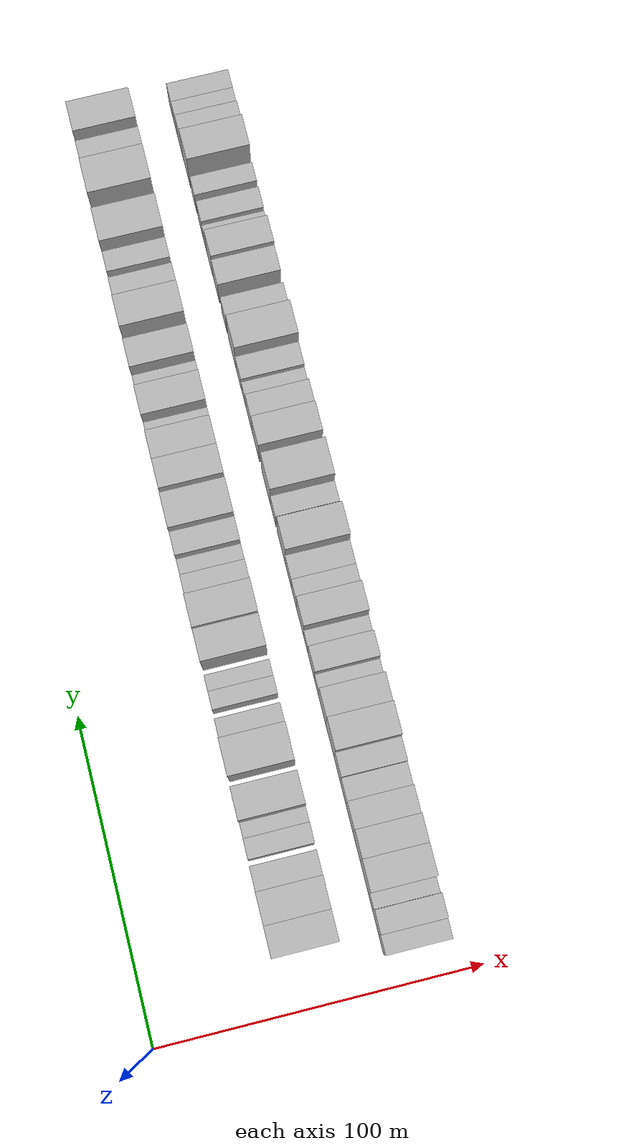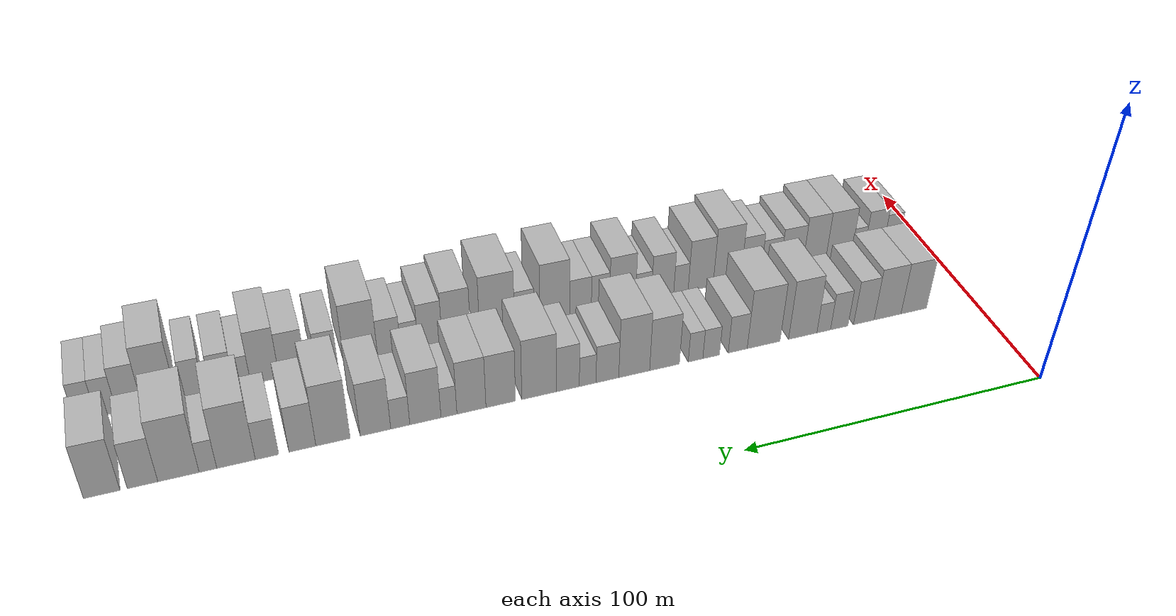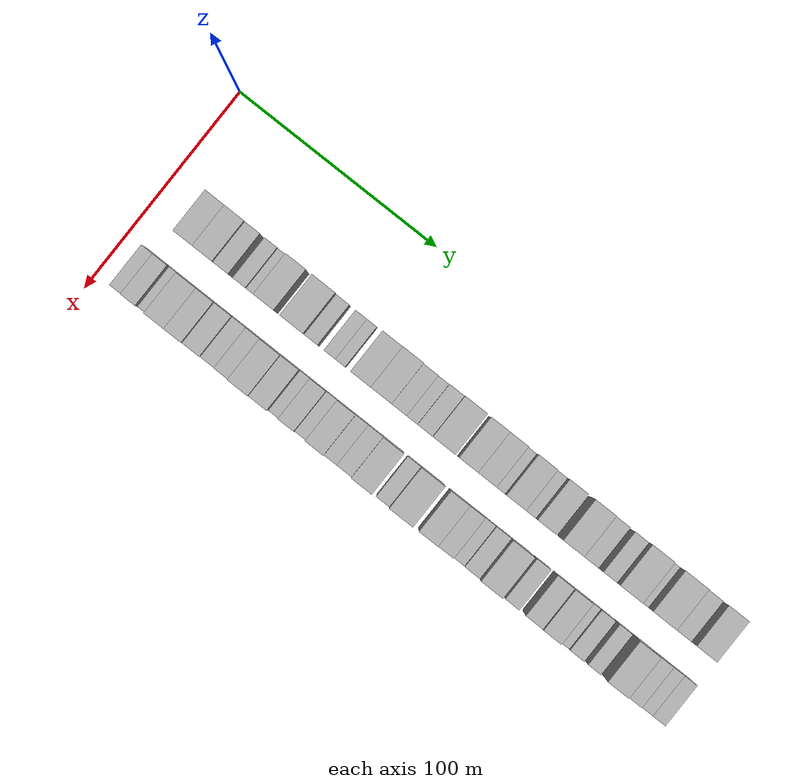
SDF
<sdf version="1.6">
 <world name="default">
  <model name="building_32">
   <static>1</static>
   <pose>50.0000 21.7320 0 0.000000 0.000000 0.000000</pose>
   <link name="link">
    <pose>0 0 10.50 0 0 0</pose>
    <collision name="collision"><geometry><box><size>20.0000 9.4007 21.0000</size></box></geometry></collision>
    <visual name="visual">
     <cast_shadows>0</cast_shadows>
     <geometry><box><size>20.0000 9.4007 21.0000</size></box></geometry>
     <material>
      <script>
       <uri>model://HANNAS_wall/materials/scripts</uri>
       <uri>model://HANNAS_wall/materials/textures</uri>
       <name>vrc/HANNAS_wall</name>
      </script>
     </material>
    </visual>
   </link>
  </model>
  <model name="building_33">
   <static>1</static>
   <pose>50.0000 31.3498 0 0.000000 0.000000 0.000000</pose>
   <link name="link">
    <pose>0 0 10.50 0 0 0</pose>
    <collision name="collision"><geometry><box><size>20.0000 9.8350 21.0000</size></box></geometry></collision>
    <visual name="visual">
     <cast_shadows>0</cast_shadows>
     <geometry><box><size>20.0000 9.8350 21.0000</size></box></geometry>
     <material>
      <script>
       <uri>model://HANNAS_wall/materials/scripts</uri>
       <uri>model://HANNAS_wall/materials/textures</uri>
       <name>vrc/HANNAS_wall</name>
      </script>
     </material>
    </visual>
   </link>
  </model>
  <model name="building_34">
   <static>1</static>
   <pose>50.0000 39.9967 0 0.000000 0.000000 0.000000</pose>
   <link name="link">
    <pose>0 0 9.00 0 0 0</pose>
    <collision name="collision"><geometry><box><size>20.0000 7.4589 18.0000</size></box></geometry></collision>
    <visual name="visual">
     <cast_shadows>0</cast_shadows>
     <geometry><box><size>20.0000 7.4589 18.0000</size></box></geometry>
     <material>
      <script>
       <uri>model://HANNAS_wall/materials/scripts</uri>
       <uri>model://HANNAS_wall/materials/textures</uri>
       <name>vrc/HANNAS_wall</name>
      </script>
     </material>
    </visual>
   </link>
  </model>
  <model name="building_35">
   <static>1</static>
   <pose>50.0000 48.8616 0 0.000000 0.000000 0.000000</pose>
   <link name="link">
    <pose>0 0 7.50 0 0 0</pose>
    <collision name="collision"><geometry><box><size>20.0000 6.2709 15.0000</size></box></geometry></collision>
    <visual name="visual">
     <cast_shadows>0</cast_shadows>
     <geometry><box><size>20.0000 6.2709 15.0000</size></box></geometry>
     <material>
      <script>
       <uri>model://HANNAS_wall/materials/scripts</uri>
       <uri>model://HANNAS_wall/materials/textures</uri>
       <name>vrc/HANNAS_wall</name>
      </script>
     </material>
    </visual>
   </link>
  </model>
  <model name="building_36">
   <static>1</static>
   <pose>50.0000 54.4242 0 0.000000 0.000000 0.000000</pose>
   <link name="link">
    <pose>0 0 6.00 0 0 0</pose>
    <collision name="collision"><geometry><box><size>20.0000 4.8543 12.0000</size></box></geometry></collision>
    <visual name="visual">
     <cast_shadows>0</cast_shadows>
     <geometry><box><size>20.0000 4.8543 12.0000</size></box></geometry>
     <material>
      <script>
       <uri>model://HANNAS_wall/materials/scripts</uri>
       <uri>model://HANNAS_wall/materials/textures</uri>
       <name>vrc/HANNAS_wall</name>
      </script>
     </material>
    </visual>
   </link>
  </model>
  <model name="building_37">
   <static>1</static>
   <pose>50.0000 61.8601 0 0.000000 0.000000 0.000000</pose>
   <link name="link">
    <pose>0 0 12.00 0 0 0</pose>
    <collision name="collision"><geometry><box><size>20.0000 10.0174 24.0000</size></box></geometry></collision>
    <visual name="visual">
     <cast_shadows>0</cast_shadows>
     <geometry><box><size>20.0000 10.0174 24.0000</size></box></geometry>
     <material>
      <script>
       <uri>model://HANNAS_wall/materials/scripts</uri>
       <uri>model://HANNAS_wall/materials/textures</uri>
       <name>vrc/HANNAS_wall</name>
      </script>
     </material>
    </visual>
   </link>
  </model>
  <model name="building_38">
   <static>1</static>
   <pose>50.0000 75.5891 0 0.000000 0.000000 0.000000</pose>
   <link name="link">
    <pose>0 0 12.00 0 0 0</pose>
    <collision name="collision"><geometry><box><size>20.0000 11.4407 24.0000</size></box></geometry></collision>
    <visual name="visual">
     <cast_shadows>0</cast_shadows>
     <geometry><box><size>20.0000 11.4407 24.0000</size></box></geometry>
     <material>
      <script>
       <uri>model://HANNAS_wall/materials/scripts</uri>
       <uri>model://HANNAS_wall/materials/textures</uri>
       <name>vrc/HANNAS_wall</name>
      </script>
     </material>
    </visual>
   </link>
  </model>
  <model name="building_39">
   <static>1</static>
   <pose>50.0000 84.5925 0 0.000000 0.000000 0.000000</pose>
   <link name="link">
    <pose>0 0 7.50 0 0 0</pose>
    <collision name="collision"><geometry><box><size>20.0000 6.5662 15.0000</size></box></geometry></collision>
    <visual name="visual">
     <cast_shadows>0</cast_shadows>
     <geometry><box><size>20.0000 6.5662 15.0000</size></box></geometry>
     <material>
      <script>
       <uri>model://HANNAS_wall/materials/scripts</uri>
       <uri>model://HANNAS_wall/materials/textures</uri>
       <name>vrc/HANNAS_wall</name>
      </script>
     </material>
    </visual>
   </link>
  </model>
  <model name="building_40">
   <static>1</static>
   <pose>50.0000 93.7142 0 0.000000 0.000000 0.000000</pose>
   <link name="link">
    <pose>0 0 6.00 0 0 0</pose>
    <collision name="collision"><geometry><box><size>20.0000 5.6771 12.0000</size></box></geometry></collision>
    <visual name="visual">
     <cast_shadows>0</cast_shadows>
     <geometry><box><size>20.0000 5.6771 12.0000</size></box></geometry>
     <material>
      <script>
       <uri>model://HANNAS_wall/materials/scripts</uri>
       <uri>model://HANNAS_wall/materials/textures</uri>
       <name>vrc/HANNAS_wall</name>
      </script>
     </material>
    </visual>
   </link>
  </model>
  <model name="building_41">
   <static>1</static>
   <pose>50.0000 99.0302 0 0.000000 0.000000 0.000000</pose>
   <link name="link">
    <pose>0 0 6.00 0 0 0</pose>
    <collision name="collision"><geometry><box><size>20.0000 4.9550 12.0000</size></box></geometry></collision>
    <visual name="visual">
     <cast_shadows>0</cast_shadows>
     <geometry><box><size>20.0000 4.9550 12.0000</size></box></geometry>
     <material>
      <script>
       <uri>model://HANNAS_wall/materials/scripts</uri>
       <uri>model://HANNAS_wall/materials/textures</uri>
       <name>vrc/HANNAS_wall</name>
      </script>
     </material>
    </visual>
   </link>
  </model>
  <model name="building_42">
   <static>1</static>
   <pose>50.0000 109.4986 0 0.000000 0.000000 0.000000</pose>
   <link name="link">
    <pose>0 0 10.50 0 0 0</pose>
    <collision name="collision"><geometry><box><size>20.0000 9.9817 21.0000</size></box></geometry></collision>
    <visual name="visual">
     <cast_shadows>0</cast_shadows>
     <geometry><box><size>20.0000 9.9817 21.0000</size></box></geometry>
     <material>
      <script>
       <uri>model://HANNAS_wall/materials/scripts</uri>
       <uri>model://HANNAS_wall/materials/textures</uri>
       <name>vrc/HANNAS_wall</name>
      </script>
     </material>
    </visual>
   </link>
  </model>
  <model name="building_43">
   <static>1</static>
   <pose>50.0000 119.6205 0 0.000000 0.000000 0.000000</pose>
   <link name="link">
    <pose>0 0 12.00 0 0 0</pose>
    <collision name="collision"><geometry><box><size>20.0000 10.2622 24.0000</size></box></geometry></collision>
    <visual name="visual">
     <cast_shadows>0</cast_shadows>
     <geometry><box><size>20.0000 10.2622 24.0000</size></box></geometry>
     <material>
      <script>
       <uri>model://HANNAS_wall/materials/scripts</uri>
       <uri>model://HANNAS_wall/materials/textures</uri>
       <name>vrc/HANNAS_wall</name>
      </script>
     </material>
    </visual>
   </link>
  </model>
  <model name="building_44">
   <static>1</static>
   <pose>50.0000 128.4850 0 0.000000 0.000000 0.000000</pose>
   <link name="link">
    <pose>0 0 7.50 0 0 0</pose>
    <collision name="collision"><geometry><box><size>20.0000 7.4667 15.0000</size></box></geometry></collision>
    <visual name="visual">
     <cast_shadows>0</cast_shadows>
     <geometry><box><size>20.0000 7.4667 15.0000</size></box></geometry>
     <material>
      <script>
       <uri>model://HANNAS_wall/materials/scripts</uri>
       <uri>model://HANNAS_wall/materials/textures</uri>
       <name>vrc/HANNAS_wall</name>
      </script>
     </material>
    </visual>
   </link>
  </model>
  <model name="building_45">
   <static>1</static>
   <pose>50.0000 134.9356 0 0.000000 0.000000 0.000000</pose>
   <link name="link">
    <pose>0 0 6.00 0 0 0</pose>
    <collision name="collision"><geometry><box><size>20.0000 5.4345 12.0000</size></box></geometry></collision>
    <visual name="visual">
     <cast_shadows>0</cast_shadows>
     <geometry><box><size>20.0000 5.4345 12.0000</size></box></geometry>
     <material>
      <script>
       <uri>model://HANNAS_wall/materials/scripts</uri>
       <uri>model://HANNAS_wall/materials/textures</uri>
       <name>vrc/HANNAS_wall</name>
      </script>
     </material>
    </visual>
   </link>
  </model>
  <model name="building_46">
   <static>1</static>
   <pose>50.0000 141.3621 0 0.000000 0.000000 0.000000</pose>
   <link name="link">
    <pose>0 0 9.00 0 0 0</pose>
    <collision name="collision"><geometry><box><size>20.0000 7.4186 18.0000</size></box></geometry></collision>
    <visual name="visual">
     <cast_shadows>0</cast_shadows>
     <geometry><box><size>20.0000 7.4186 18.0000</size></box></geometry>
     <material>
      <script>
       <uri>model://HANNAS_wall/materials/scripts</uri>
       <uri>model://HANNAS_wall/materials/textures</uri>
       <name>vrc/HANNAS_wall</name>
      </script>
     </material>
    </visual>
   </link>
  </model>
  <model name="building_47">
   <static>1</static>
   <pose>50.0000 150.5891 0 0.000000 0.000000 0.000000</pose>
   <link name="link">
    <pose>0 0 12.00 0 0 0</pose>
    <collision name="collision"><geometry><box><size>20.0000 11.0352 24.0000</size></box></geometry></collision>
    <visual name="visual">
     <cast_shadows>0</cast_shadows>
     <geometry><box><size>20.0000 11.0352 24.0000</size></box></geometry>
     <material>
      <script>
       <uri>model://HANNAS_wall/materials/scripts</uri>
       <uri>model://HANNAS_wall/materials/textures</uri>
       <name>vrc/HANNAS_wall</name>
      </script>
     </material>
    </visual>
   </link>
  </model>
  <model name="building_48">
   <static>1</static>
   <pose>50.0000 162.7704 0 0.000000 0.000000 0.000000</pose>
   <link name="link">
    <pose>0 0 10.50 0 0 0</pose>
    <collision name="collision"><geometry><box><size>20.0000 9.3275 21.0000</size></box></geometry></collision>
    <visual name="visual">
     <cast_shadows>0</cast_shadows>
     <geometry><box><size>20.0000 9.3275 21.0000</size></box></geometry>
     <material>
      <script>
       <uri>model://HANNAS_wall/materials/scripts</uri>
       <uri>model://HANNAS_wall/materials/textures</uri>
       <name>vrc/HANNAS_wall</name>
      </script>
     </material>
    </visual>
   </link>
  </model>
  <model name="building_49">
   <static>1</static>
   <pose>50.0000 171.9692 0 0.000000 0.000000 0.000000</pose>
   <link name="link">
    <pose>0 0 10.50 0 0 0</pose>
    <collision name="collision"><geometry><box><size>20.0000 9.0700 21.0000</size></box></geometry></collision>
    <visual name="visual">
     <cast_shadows>0</cast_shadows>
     <geometry><box><size>20.0000 9.0700 21.0000</size></box></geometry>
     <material>
      <script>
       <uri>model://HANNAS_wall/materials/scripts</uri>
       <uri>model://HANNAS_wall/materials/textures</uri>
       <name>vrc/HANNAS_wall</name>
      </script>
     </material>
    </visual>
   </link>
  </model>
  <model name="building_50">
   <static>1</static>
   <pose>50.0000 178.9733 0 0.000000 0.000000 0.000000</pose>
   <link name="link">
    <pose>0 0 6.00 0 0 0</pose>
    <collision name="collision"><geometry><box><size>20.0000 4.9381 12.0000</size></box></geometry></collision>
    <visual name="visual">
     <cast_shadows>0</cast_shadows>
     <geometry><box><size>20.0000 4.9381 12.0000</size></box></geometry>
     <material>
      <script>
       <uri>model://HANNAS_wall/materials/scripts</uri>
       <uri>model://HANNAS_wall/materials/textures</uri>
       <name>vrc/HANNAS_wall</name>
      </script>
     </material>
    </visual>
   </link>
  </model>
  <model name="building_51">
   <static>1</static>
   <pose>50.0000 186.2289 0 0.000000 0.000000 0.000000</pose>
   <link name="link">
    <pose>0 0 10.50 0 0 0</pose>
    <collision name="collision"><geometry><box><size>20.0000 9.5733 21.0000</size></box></geometry></collision>
    <visual name="visual">
     <cast_shadows>0</cast_shadows>
     <geometry><box><size>20.0000 9.5733 21.0000</size></box></geometry>
     <material>
      <script>
       <uri>model://HANNAS_wall/materials/scripts</uri>
       <uri>model://HANNAS_wall/materials/textures</uri>
       <name>vrc/HANNAS_wall</name>
      </script>
     </material>
    </visual>
   </link>
  </model>
  <model name="building_52">
   <static>1</static>
   <pose>50.0000 193.9104 0 0.000000 0.000000 0.000000</pose>
   <link name="link">
    <pose>0 0 6.00 0 0 0</pose>
    <collision name="collision"><geometry><box><size>20.0000 5.7896 12.0000</size></box></geometry></collision>
    <visual name="visual">
     <cast_shadows>0</cast_shadows>
     <geometry><box><size>20.0000 5.7896 12.0000</size></box></geometry>
     <material>
      <script>
       <uri>model://HANNAS_wall/materials/scripts</uri>
       <uri>model://HANNAS_wall/materials/textures</uri>
       <name>vrc/HANNAS_wall</name>
      </script>
     </material>
    </visual>
   </link>
  </model>
  <model name="building_53">
   <static>1</static>
   <pose>50.0000 201.4157 0 0.000000 0.000000 0.000000</pose>
   <link name="link">
    <pose>0 0 10.50 0 0 0</pose>
    <collision name="collision"><geometry><box><size>20.0000 9.2210 21.0000</size></box></geometry></collision>
    <visual name="visual">
     <cast_shadows>0</cast_shadows>
     <geometry><box><size>20.0000 9.2210 21.0000</size></box></geometry>
     <material>
      <script>
       <uri>model://HANNAS_wall/materials/scripts</uri>
       <uri>model://HANNAS_wall/materials/textures</uri>
       <name>vrc/HANNAS_wall</name>
      </script>
     </material>
    </visual>
   </link>
  </model>
  <model name="building_54">
   <static>1</static>
   <pose>50.0000 214.1235 0 0.000000 0.000000 0.000000</pose>
   <link name="link">
    <pose>0 0 12.00 0 0 0</pose>
    <collision name="collision"><geometry><box><size>20.0000 10.1945 24.0000</size></box></geometry></collision>
    <visual name="visual">
     <cast_shadows>0</cast_shadows>
     <geometry><box><size>20.0000 10.1945 24.0000</size></box></geometry>
     <material>
      <script>
       <uri>model://HANNAS_wall/materials/scripts</uri>
       <uri>model://HANNAS_wall/materials/textures</uri>
       <name>vrc/HANNAS_wall</name>
      </script>
     </material>
    </visual>
   </link>
  </model>
  <model name="building_55">
   <static>1</static>
   <pose>50.0000 223.1803 0 0.000000 0.000000 0.000000</pose>
   <link name="link">
    <pose>0 0 9.00 0 0 0</pose>
    <collision name="collision"><geometry><box><size>20.0000 7.9191 18.0000</size></box></geometry></collision>
    <visual name="visual">
     <cast_shadows>0</cast_shadows>
     <geometry><box><size>20.0000 7.9191 18.0000</size></box></geometry>
     <material>
      <script>
       <uri>model://HANNAS_wall/materials/scripts</uri>
       <uri>model://HANNAS_wall/materials/textures</uri>
       <name>vrc/HANNAS_wall</name>
      </script>
     </material>
    </visual>
   </link>
  </model>
  <model name="building_56">
   <static>1</static>
   <pose>50.0000 233.5249 0 0.000000 0.000000 0.000000</pose>
   <link name="link">
    <pose>0 0 7.50 0 0 0</pose>
    <collision name="collision"><geometry><box><size>20.0000 6.7701 15.0000</size></box></geometry></collision>
    <visual name="visual">
     <cast_shadows>0</cast_shadows>
     <geometry><box><size>20.0000 6.7701 15.0000</size></box></geometry>
     <material>
      <script>
       <uri>model://HANNAS_wall/materials/scripts</uri>
       <uri>model://HANNAS_wall/materials/textures</uri>
       <name>vrc/HANNAS_wall</name>
      </script>
     </material>
    </visual>
   </link>
  </model>
  <model name="building_57">
   <static>1</static>
   <pose>50.0000 242.4495 0 0.000000 0.000000 0.000000</pose>
   <link name="link">
    <pose>0 0 12.00 0 0 0</pose>
    <collision name="collision"><geometry><box><size>20.0000 11.0789 24.0000</size></box></geometry></collision>
    <visual name="visual">
     <cast_shadows>0</cast_shadows>
     <geometry><box><size>20.0000 11.0789 24.0000</size></box></geometry>
     <material>
      <script>
       <uri>model://HANNAS_wall/materials/scripts</uri>
       <uri>model://HANNAS_wall/materials/textures</uri>
       <name>vrc/HANNAS_wall</name>
      </script>
     </material>
    </visual>
   </link>
  </model>
  <model name="building_58">
   <static>1</static>
   <pose>50.0000 250.5043 0 0.000000 0.000000 0.000000</pose>
   <link name="link">
    <pose>0 0 6.00 0 0 0</pose>
    <collision name="collision"><geometry><box><size>20.0000 5.0308 12.0000</size></box></geometry></collision>
    <visual name="visual">
     <cast_shadows>0</cast_shadows>
     <geometry><box><size>20.0000 5.0308 12.0000</size></box></geometry>
     <material>
      <script>
       <uri>model://HANNAS_wall/materials/scripts</uri>
       <uri>model://HANNAS_wall/materials/textures</uri>
       <name>vrc/HANNAS_wall</name>
      </script>
     </material>
    </visual>
   </link>
  </model>
  <model name="building_59">
   <static>1</static>
   <pose>50.0000 258.8206 0 0.000000 0.000000 0.000000</pose>
   <link name="link">
    <pose>0 0 12.00 0 0 0</pose>
    <collision name="collision"><geometry><box><size>20.0000 11.6018 24.0000</size></box></geometry></collision>
    <visual name="visual">
     <cast_shadows>0</cast_shadows>
     <geometry><box><size>20.0000 11.6018 24.0000</size></box></geometry>
     <material>
      <script>
       <uri>model://HANNAS_wall/materials/scripts</uri>
       <uri>model://HANNAS_wall/materials/textures</uri>
       <name>vrc/HANNAS_wall</name>
      </script>
     </material>
    </visual>
   </link>
  </model>
  <model name="building_60">
   <static>1</static>
   <pose>50.0000 268.8721 0 0.000000 0.000000 0.000000</pose>
   <link name="link">
    <pose>0 0 9.00 0 0 0</pose>
    <collision name="collision"><geometry><box><size>20.0000 8.5012 18.0000</size></box></geometry></collision>
    <visual name="visual">
     <cast_shadows>0</cast_shadows>
     <geometry><box><size>20.0000 8.5012 18.0000</size></box></geometry>
     <material>
      <script>
       <uri>model://HANNAS_wall/materials/scripts</uri>
       <uri>model://HANNAS_wall/materials/textures</uri>
       <name>vrc/HANNAS_wall</name>
      </script>
     </material>
    </visual>
   </link>
  </model>
  <model name="building_61">
   <static>1</static>
   <pose>50.0000 280.1380 0 0.000000 0.000000 0.000000</pose>
   <link name="link">
    <pose>0 0 10.50 0 0 0</pose>
    <collision name="collision"><geometry><box><size>20.0000 10.0306 21.0000</size></box></geometry></collision>
    <visual name="visual">
     <cast_shadows>0</cast_shadows>
     <geometry><box><size>20.0000 10.0306 21.0000</size></box></geometry>
     <material>
      <script>
       <uri>model://HANNAS_wall/materials/scripts</uri>
       <uri>model://HANNAS_wall/materials/textures</uri>
       <name>vrc/HANNAS_wall</name>
      </script>
     </material>
    </visual>
   </link>
  </model>
  <model name="building_94">
   <static>1</static>
   <pose>82.0000 12.8308 0 0.000000 0.000000 0.000000</pose>
   <link name="link">
    <pose>0 0 7.50 0 0 0</pose>
    <collision name="collision"><geometry><box><size>20.0000 6.0413 15.0000</size></box></geometry></collision>
    <visual name="visual">
     <cast_shadows>0</cast_shadows>
     <geometry><box><size>20.0000 6.0413 15.0000</size></box></geometry>
     <material>
      <script>
       <uri>model://HANNAS_wall/materials/scripts</uri>
       <uri>model://HANNAS_wall/materials/textures</uri>
       <name>vrc/HANNAS_wall</name>
      </script>
     </material>
    </visual>
   </link>
  </model>
  <model name="building_95">
   <static>1</static>
   <pose>82.0000 19.5110 0 0.000000 0.000000 0.000000</pose>
   <link name="link">
    <pose>0 0 9.00 0 0 0</pose>
    <collision name="collision"><geometry><box><size>20.0000 7.3191 18.0000</size></box></geometry></collision>
    <visual name="visual">
     <cast_shadows>0</cast_shadows>
     <geometry><box><size>20.0000 7.3191 18.0000</size></box></geometry>
     <material>
      <script>
       <uri>model://HANNAS_wall/materials/scripts</uri>
       <uri>model://HANNAS_wall/materials/textures</uri>
       <name>vrc/HANNAS_wall</name>
      </script>
     </material>
    </visual>
   </link>
  </model>
  <model name="building_96">
   <static>1</static>
   <pose>82.0000 25.5887 0 0.000000 0.000000 0.000000</pose>
   <link name="link">
    <pose>0 0 6.00 0 0 0</pose>
    <collision name="collision"><geometry><box><size>20.0000 4.8363 12.0000</size></box></geometry></collision>
    <visual name="visual">
     <cast_shadows>0</cast_shadows>
     <geometry><box><size>20.0000 4.8363 12.0000</size></box></geometry>
     <material>
      <script>
       <uri>model://HANNAS_wall/materials/scripts</uri>
       <uri>model://HANNAS_wall/materials/textures</uri>
       <name>vrc/HANNAS_wall</name>
      </script>
     </material>
    </visual>
   </link>
  </model>
  <model name="building_97">
   <static>1</static>
   <pose>82.0000 32.9070 0 0.000000 0.000000 0.000000</pose>
   <link name="link">
    <pose>0 0 10.50 0 0 0</pose>
    <collision name="collision"><geometry><box><size>20.0000 9.8003 21.0000</size></box></geometry></collision>
    <visual name="visual">
     <cast_shadows>0</cast_shadows>
     <geometry><box><size>20.0000 9.8003 21.0000</size></box></geometry>
     <material>
      <script>
       <uri>model://HANNAS_wall/materials/scripts</uri>
       <uri>model://HANNAS_wall/materials/textures</uri>
       <name>vrc/HANNAS_wall</name>
      </script>
     </material>
    </visual>
   </link>
  </model>
  <model name="building_98">
   <static>1</static>
   <pose>82.0000 42.1317 0 0.000000 0.000000 0.000000</pose>
   <link name="link">
    <pose>0 0 10.50 0 0 0</pose>
    <collision name="collision"><geometry><box><size>20.0000 8.6489 21.0000</size></box></geometry></collision>
    <visual name="visual">
     <cast_shadows>0</cast_shadows>
     <geometry><box><size>20.0000 8.6489 21.0000</size></box></geometry>
     <material>
      <script>
       <uri>model://HANNAS_wall/materials/scripts</uri>
       <uri>model://HANNAS_wall/materials/textures</uri>
       <name>vrc/HANNAS_wall</name>
      </script>
     </material>
    </visual>
   </link>
  </model>
  <model name="building_99">
   <static>1</static>
   <pose>82.0000 50.7151 0 0.000000 0.000000 0.000000</pose>
   <link name="link">
    <pose>0 0 9.00 0 0 0</pose>
    <collision name="collision"><geometry><box><size>20.0000 8.5179 18.0000</size></box></geometry></collision>
    <visual name="visual">
     <cast_shadows>0</cast_shadows>
     <geometry><box><size>20.0000 8.5179 18.0000</size></box></geometry>
     <material>
      <script>
       <uri>model://HANNAS_wall/materials/scripts</uri>
       <uri>model://HANNAS_wall/materials/textures</uri>
       <name>vrc/HANNAS_wall</name>
      </script>
     </material>
    </visual>
   </link>
  </model>
  <model name="building_100">
   <static>1</static>
   <pose>82.0000 58.5149 0 0.000000 0.000000 0.000000</pose>
   <link name="link">
    <pose>0 0 7.50 0 0 0</pose>
    <collision name="collision"><geometry><box><size>20.0000 7.0816 15.0000</size></box></geometry></collision>
    <visual name="visual">
     <cast_shadows>0</cast_shadows>
     <geometry><box><size>20.0000 7.0816 15.0000</size></box></geometry>
     <material>
      <script>
       <uri>model://HANNAS_wall/materials/scripts</uri>
       <uri>model://HANNAS_wall/materials/textures</uri>
       <name>vrc/HANNAS_wall</name>
      </script>
     </material>
    </visual>
   </link>
  </model>
  <model name="building_101">
   <static>1</static>
   <pose>82.0000 65.7630 0 0.000000 0.000000 0.000000</pose>
   <link name="link">
    <pose>0 0 9.00 0 0 0</pose>
    <collision name="collision"><geometry><box><size>20.0000 7.4145 18.0000</size></box></geometry></collision>
    <visual name="visual">
     <cast_shadows>0</cast_shadows>
     <geometry><box><size>20.0000 7.4145 18.0000</size></box></geometry>
     <material>
      <script>
       <uri>model://HANNAS_wall/materials/scripts</uri>
       <uri>model://HANNAS_wall/materials/textures</uri>
       <name>vrc/HANNAS_wall</name>
      </script>
     </material>
    </visual>
   </link>
  </model>
  <model name="building_102">
   <static>1</static>
   <pose>82.0000 74.5083 0 0.000000 0.000000 0.000000</pose>
   <link name="link">
    <pose>0 0 12.00 0 0 0</pose>
    <collision name="collision"><geometry><box><size>20.0000 10.0762 24.0000</size></box></geometry></collision>
    <visual name="visual">
     <cast_shadows>0</cast_shadows>
     <geometry><box><size>20.0000 10.0762 24.0000</size></box></geometry>
     <material>
      <script>
       <uri>model://HANNAS_wall/materials/scripts</uri>
       <uri>model://HANNAS_wall/materials/textures</uri>
       <name>vrc/HANNAS_wall</name>
      </script>
     </material>
    </visual>
   </link>
  </model>
  <model name="building_103">
   <static>1</static>
   <pose>82.0000 84.0635 0 0.000000 0.000000 0.000000</pose>
   <link name="link">
    <pose>0 0 10.50 0 0 0</pose>
    <collision name="collision"><geometry><box><size>20.0000 9.0342 21.0000</size></box></geometry></collision>
    <visual name="visual">
     <cast_shadows>0</cast_shadows>
     <geometry><box><size>20.0000 9.0342 21.0000</size></box></geometry>
     <material>
      <script>
       <uri>model://HANNAS_wall/materials/scripts</uri>
       <uri>model://HANNAS_wall/materials/textures</uri>
       <name>vrc/HANNAS_wall</name>
      </script>
     </material>
    </visual>
   </link>
  </model>
  <model name="building_104">
   <static>1</static>
   <pose>82.0000 91.1669 0 0.000000 0.000000 0.000000</pose>
   <link name="link">
    <pose>0 0 6.00 0 0 0</pose>
    <collision name="collision"><geometry><box><size>20.0000 5.1724 12.0000</size></box></geometry></collision>
    <visual name="visual">
     <cast_shadows>0</cast_shadows>
     <geometry><box><size>20.0000 5.1724 12.0000</size></box></geometry>
     <material>
      <script>
       <uri>model://HANNAS_wall/materials/scripts</uri>
       <uri>model://HANNAS_wall/materials/textures</uri>
       <name>vrc/HANNAS_wall</name>
      </script>
     </material>
    </visual>
   </link>
  </model>
  <model name="building_105">
   <static>1</static>
   <pose>82.0000 97.7378 0 0.000000 0.000000 0.000000</pose>
   <link name="link">
    <pose>0 0 9.00 0 0 0</pose>
    <collision name="collision"><geometry><box><size>20.0000 7.9695 18.0000</size></box></geometry></collision>
    <visual name="visual">
     <cast_shadows>0</cast_shadows>
     <geometry><box><size>20.0000 7.9695 18.0000</size></box></geometry>
     <material>
      <script>
       <uri>model://HANNAS_wall/materials/scripts</uri>
       <uri>model://HANNAS_wall/materials/textures</uri>
       <name>vrc/HANNAS_wall</name>
      </script>
     </material>
    </visual>
   </link>
  </model>
  <model name="building_106">
   <static>1</static>
   <pose>82.0000 104.5505 0 0.000000 0.000000 0.000000</pose>
   <link name="link">
    <pose>0 0 6.00 0 0 0</pose>
    <collision name="collision"><geometry><box><size>20.0000 5.6559 12.0000</size></box></geometry></collision>
    <visual name="visual">
     <cast_shadows>0</cast_shadows>
     <geometry><box><size>20.0000 5.6559 12.0000</size></box></geometry>
     <material>
      <script>
       <uri>model://HANNAS_wall/materials/scripts</uri>
       <uri>model://HANNAS_wall/materials/textures</uri>
       <name>vrc/HANNAS_wall</name>
      </script>
     </material>
    </visual>
   </link>
  </model>
  <model name="building_107">
   <static>1</static>
   <pose>82.0000 111.9426 0 0.000000 0.000000 0.000000</pose>
   <link name="link">
    <pose>0 0 10.50 0 0 0</pose>
    <collision name="collision"><geometry><box><size>20.0000 9.1282 21.0000</size></box></geometry></collision>
    <visual name="visual">
     <cast_shadows>0</cast_shadows>
     <geometry><box><size>20.0000 9.1282 21.0000</size></box></geometry>
     <material>
      <script>
       <uri>model://HANNAS_wall/materials/scripts</uri>
       <uri>model://HANNAS_wall/materials/textures</uri>
       <name>vrc/HANNAS_wall</name>
      </script>
     </material>
    </visual>
   </link>
  </model>
  <model name="building_108">
   <static>1</static>
   <pose>82.0000 119.6538 0 0.000000 0.000000 0.000000</pose>
   <link name="link">
    <pose>0 0 7.50 0 0 0</pose>
    <collision name="collision"><geometry><box><size>20.0000 6.2944 15.0000</size></box></geometry></collision>
    <visual name="visual">
     <cast_shadows>0</cast_shadows>
     <geometry><box><size>20.0000 6.2944 15.0000</size></box></geometry>
     <material>
      <script>
       <uri>model://HANNAS_wall/materials/scripts</uri>
       <uri>model://HANNAS_wall/materials/textures</uri>
       <name>vrc/HANNAS_wall</name>
      </script>
     </material>
    </visual>
   </link>
  </model>
  <model name="building_109">
   <static>1</static>
   <pose>82.0000 126.5444 0 0.000000 0.000000 0.000000</pose>
   <link name="link">
    <pose>0 0 7.50 0 0 0</pose>
    <collision name="collision"><geometry><box><size>20.0000 7.4867 15.0000</size></box></geometry></collision>
    <visual name="visual">
     <cast_shadows>0</cast_shadows>
     <geometry><box><size>20.0000 7.4867 15.0000</size></box></geometry>
     <material>
      <script>
       <uri>model://HANNAS_wall/materials/scripts</uri>
       <uri>model://HANNAS_wall/materials/textures</uri>
       <name>vrc/HANNAS_wall</name>
      </script>
     </material>
    </visual>
   </link>
  </model>
  <model name="building_110">
   <static>1</static>
   <pose>82.0000 135.3780 0 0.000000 0.000000 0.000000</pose>
   <link name="link">
    <pose>0 0 12.00 0 0 0</pose>
    <collision name="collision"><geometry><box><size>20.0000 10.1806 24.0000</size></box></geometry></collision>
    <visual name="visual">
     <cast_shadows>0</cast_shadows>
     <geometry><box><size>20.0000 10.1806 24.0000</size></box></geometry>
     <material>
      <script>
       <uri>model://HANNAS_wall/materials/scripts</uri>
       <uri>model://HANNAS_wall/materials/textures</uri>
       <name>vrc/HANNAS_wall</name>
      </script>
     </material>
    </visual>
   </link>
  </model>
  <model name="building_111">
   <static>1</static>
   <pose>82.0000 145.7549 0 0.000000 0.000000 0.000000</pose>
   <link name="link">
    <pose>0 0 7.50 0 0 0</pose>
    <collision name="collision"><geometry><box><size>20.0000 6.5731 15.0000</size></box></geometry></collision>
    <visual name="visual">
     <cast_shadows>0</cast_shadows>
     <geometry><box><size>20.0000 6.5731 15.0000</size></box></geometry>
     <material>
      <script>
       <uri>model://HANNAS_wall/materials/scripts</uri>
       <uri>model://HANNAS_wall/materials/textures</uri>
       <name>vrc/HANNAS_wall</name>
      </script>
     </material>
    </visual>
   </link>
  </model>
  <model name="building_112">
   <static>1</static>
   <pose>82.0000 154.8648 0 0.000000 0.000000 0.000000</pose>
   <link name="link">
    <pose>0 0 12.00 0 0 0</pose>
    <collision name="collision"><geometry><box><size>20.0000 11.6469 24.0000</size></box></geometry></collision>
    <visual name="visual">
     <cast_shadows>0</cast_shadows>
     <geometry><box><size>20.0000 11.6469 24.0000</size></box></geometry>
     <material>
      <script>
       <uri>model://HANNAS_wall/materials/scripts</uri>
       <uri>model://HANNAS_wall/materials/textures</uri>
       <name>vrc/HANNAS_wall</name>
      </script>
     </material>
    </visual>
   </link>
  </model>
  <model name="building_113">
   <static>1</static>
   <pose>82.0000 168.3723 0 0.000000 0.000000 0.000000</pose>
   <link name="link">
    <pose>0 0 10.50 0 0 0</pose>
    <collision name="collision"><geometry><box><size>20.0000 9.3680 21.0000</size></box></geometry></collision>
    <visual name="visual">
     <cast_shadows>0</cast_shadows>
     <geometry><box><size>20.0000 9.3680 21.0000</size></box></geometry>
     <material>
      <script>
       <uri>model://HANNAS_wall/materials/scripts</uri>
       <uri>model://HANNAS_wall/materials/textures</uri>
       <name>vrc/HANNAS_wall</name>
      </script>
     </material>
    </visual>
   </link>
  </model>
  <model name="building_114">
   <static>1</static>
   <pose>82.0000 176.9831 0 0.000000 0.000000 0.000000</pose>
   <link name="link">
    <pose>0 0 9.00 0 0 0</pose>
    <collision name="collision"><geometry><box><size>20.0000 7.8537 18.0000</size></box></geometry></collision>
    <visual name="visual">
     <cast_shadows>0</cast_shadows>
     <geometry><box><size>20.0000 7.8537 18.0000</size></box></geometry>
     <material>
      <script>
       <uri>model://HANNAS_wall/materials/scripts</uri>
       <uri>model://HANNAS_wall/materials/textures</uri>
       <name>vrc/HANNAS_wall</name>
      </script>
     </material>
    </visual>
   </link>
  </model>
  <model name="building_115">
   <static>1</static>
   <pose>82.0000 183.7573 0 0.000000 0.000000 0.000000</pose>
   <link name="link">
    <pose>0 0 6.00 0 0 0</pose>
    <collision name="collision"><geometry><box><size>20.0000 5.6946 12.0000</size></box></geometry></collision>
    <visual name="visual">
     <cast_shadows>0</cast_shadows>
     <geometry><box><size>20.0000 5.6946 12.0000</size></box></geometry>
     <material>
      <script>
       <uri>model://HANNAS_wall/materials/scripts</uri>
       <uri>model://HANNAS_wall/materials/textures</uri>
       <name>vrc/HANNAS_wall</name>
      </script>
     </material>
    </visual>
   </link>
  </model>
  <model name="building_116">
   <static>1</static>
   <pose>82.0000 190.3199 0 0.000000 0.000000 0.000000</pose>
   <link name="link">
    <pose>0 0 7.50 0 0 0</pose>
    <collision name="collision"><geometry><box><size>20.0000 7.4305 15.0000</size></box></geometry></collision>
    <visual name="visual">
     <cast_shadows>0</cast_shadows>
     <geometry><box><size>20.0000 7.4305 15.0000</size></box></geometry>
     <material>
      <script>
       <uri>model://HANNAS_wall/materials/scripts</uri>
       <uri>model://HANNAS_wall/materials/textures</uri>
       <name>vrc/HANNAS_wall</name>
      </script>
     </material>
    </visual>
   </link>
  </model>
  <model name="building_117">
   <static>1</static>
   <pose>82.0000 199.3925 0 0.000000 0.000000 0.000000</pose>
   <link name="link">
    <pose>0 0 12.00 0 0 0</pose>
    <collision name="collision"><geometry><box><size>20.0000 10.7147 24.0000</size></box></geometry></collision>
    <visual name="visual">
     <cast_shadows>0</cast_shadows>
     <geometry><box><size>20.0000 10.7147 24.0000</size></box></geometry>
     <material>
      <script>
       <uri>model://HANNAS_wall/materials/scripts</uri>
       <uri>model://HANNAS_wall/materials/textures</uri>
       <name>vrc/HANNAS_wall</name>
      </script>
     </material>
    </visual>
   </link>
  </model>
  <model name="building_118">
   <static>1</static>
   <pose>82.0000 210.2213 0 0.000000 0.000000 0.000000</pose>
   <link name="link">
    <pose>0 0 7.50 0 0 0</pose>
    <collision name="collision"><geometry><box><size>20.0000 6.9428 15.0000</size></box></geometry></collision>
    <visual name="visual">
     <cast_shadows>0</cast_shadows>
     <geometry><box><size>20.0000 6.9428 15.0000</size></box></geometry>
     <material>
      <script>
       <uri>model://HANNAS_wall/materials/scripts</uri>
       <uri>model://HANNAS_wall/materials/textures</uri>
       <name>vrc/HANNAS_wall</name>
      </script>
     </material>
    </visual>
   </link>
  </model>
  <model name="building_119">
   <static>1</static>
   <pose>82.0000 220.8697 0 0.000000 0.000000 0.000000</pose>
   <link name="link">
    <pose>0 0 9.00 0 0 0</pose>
    <collision name="collision"><geometry><box><size>20.0000 8.3540 18.0000</size></box></geometry></collision>
    <visual name="visual">
     <cast_shadows>0</cast_shadows>
     <geometry><box><size>20.0000 8.3540 18.0000</size></box></geometry>
     <material>
      <script>
       <uri>model://HANNAS_wall/materials/scripts</uri>
       <uri>model://HANNAS_wall/materials/textures</uri>
       <name>vrc/HANNAS_wall</name>
      </script>
     </material>
    </visual>
   </link>
  </model>
  <model name="building_120">
   <static>1</static>
   <pose>82.0000 229.4528 0 0.000000 0.000000 0.000000</pose>
   <link name="link">
    <pose>0 0 10.50 0 0 0</pose>
    <collision name="collision"><geometry><box><size>20.0000 8.8123 21.0000</size></box></geometry></collision>
    <visual name="visual">
     <cast_shadows>0</cast_shadows>
     <geometry><box><size>20.0000 8.8123 21.0000</size></box></geometry>
     <material>
      <script>
       <uri>model://HANNAS_wall/materials/scripts</uri>
       <uri>model://HANNAS_wall/materials/textures</uri>
       <name>vrc/HANNAS_wall</name>
      </script>
     </material>
    </visual>
   </link>
  </model>
  <model name="building_121">
   <static>1</static>
   <pose>82.0000 236.3786 0 0.000000 0.000000 0.000000</pose>
   <link name="link">
    <pose>0 0 6.00 0 0 0</pose>
    <collision name="collision"><geometry><box><size>20.0000 5.0395 12.0000</size></box></geometry></collision>
    <visual name="visual">
     <cast_shadows>0</cast_shadows>
     <geometry><box><size>20.0000 5.0395 12.0000</size></box></geometry>
     <material>
      <script>
       <uri>model://HANNAS_wall/materials/scripts</uri>
       <uri>model://HANNAS_wall/materials/textures</uri>
       <name>vrc/HANNAS_wall</name>
      </script>
     </material>
    </visual>
   </link>
  </model>
  <model name="building_122">
   <static>1</static>
   <pose>82.0000 242.4107 0 0.000000 0.000000 0.000000</pose>
   <link name="link">
    <pose>0 0 7.50 0 0 0</pose>
    <collision name="collision"><geometry><box><size>20.0000 7.0246 15.0000</size></box></geometry></collision>
    <visual name="visual">
     <cast_shadows>0</cast_shadows>
     <geometry><box><size>20.0000 7.0246 15.0000</size></box></geometry>
     <material>
      <script>
       <uri>model://HANNAS_wall/materials/scripts</uri>
       <uri>model://HANNAS_wall/materials/textures</uri>
       <name>vrc/HANNAS_wall</name>
      </script>
     </material>
    </visual>
   </link>
  </model>
  <model name="building_123">
   <static>1</static>
   <pose>82.0000 251.0815 0 0.000000 0.000000 0.000000</pose>
   <link name="link">
    <pose>0 0 7.50 0 0 0</pose>
    <collision name="collision"><geometry><box><size>20.0000 6.3170 15.0000</size></box></geometry></collision>
    <visual name="visual">
     <cast_shadows>0</cast_shadows>
     <geometry><box><size>20.0000 6.3170 15.0000</size></box></geometry>
     <material>
      <script>
       <uri>model://HANNAS_wall/materials/scripts</uri>
       <uri>model://HANNAS_wall/materials/textures</uri>
       <name>vrc/HANNAS_wall</name>
      </script>
     </material>
    </visual>
   </link>
  </model>
  <model name="building_124">
   <static>1</static>
   <pose>82.0000 261.3733 0 0.000000 0.000000 0.000000</pose>
   <link name="link">
    <pose>0 0 12.00 0 0 0</pose>
    <collision name="collision"><geometry><box><size>20.0000 10.2667 24.0000</size></box></geometry></collision>
    <visual name="visual">
     <cast_shadows>0</cast_shadows>
     <geometry><box><size>20.0000 10.2667 24.0000</size></box></geometry>
     <material>
      <script>
       <uri>model://HANNAS_wall/materials/scripts</uri>
       <uri>model://HANNAS_wall/materials/textures</uri>
       <name>vrc/HANNAS_wall</name>
      </script>
     </material>
    </visual>
   </link>
  </model>
  <model name="building_125">
   <static>1</static>
   <pose>82.0000 270.2775 0 0.000000 0.000000 0.000000</pose>
   <link name="link">
    <pose>0 0 9.00 0 0 0</pose>
    <collision name="collision"><geometry><box><size>20.0000 7.5417 18.0000</size></box></geometry></collision>
    <visual name="visual">
     <cast_shadows>0</cast_shadows>
     <geometry><box><size>20.0000 7.5417 18.0000</size></box></geometry>
     <material>
      <script>
       <uri>model://HANNAS_wall/materials/scripts</uri>
       <uri>model://HANNAS_wall/materials/textures</uri>
       <name>vrc/HANNAS_wall</name>
      </script>
     </material>
    </visual>
   </link>
  </model>
  <model name="building_126">
   <static>1</static>
   <pose>82.0000 277.0608 0 0.000000 0.000000 0.000000</pose>
   <link name="link">
    <pose>0 0 7.50 0 0 0</pose>
    <collision name="collision"><geometry><box><size>20.0000 6.0250 15.0000</size></box></geometry></collision>
    <visual name="visual">
     <cast_shadows>0</cast_shadows>
     <geometry><box><size>20.0000 6.0250 15.0000</size></box></geometry>
     <material>
      <script>
       <uri>model://HANNAS_wall/materials/scripts</uri>
       <uri>model://HANNAS_wall/materials/textures</uri>
       <name>vrc/HANNAS_wall</name>
      </script>
     </material>
    </visual>
   </link>
  </model>
  <model name="building_127">
   <static>1</static>
   <pose>82.0000 283.1901 0 0.000000 0.000000 0.000000</pose>
   <link name="link">
    <pose>0 0 7.50 0 0 0</pose>
    <collision name="collision"><geometry><box><size>20.0000 6.2335 15.0000</size></box></geometry></collision>
    <visual name="visual">
     <cast_shadows>0</cast_shadows>
     <geometry><box><size>20.0000 6.2335 15.0000</size></box></geometry>
     <material>
      <script>
       <uri>model://HANNAS_wall/materials/scripts</uri>
       <uri>model://HANNAS_wall/materials/textures</uri>
       <name>vrc/HANNAS_wall</name>
      </script>
     </material>
    </visual>
   </link>
  </model>
 </world>
</sdf>
